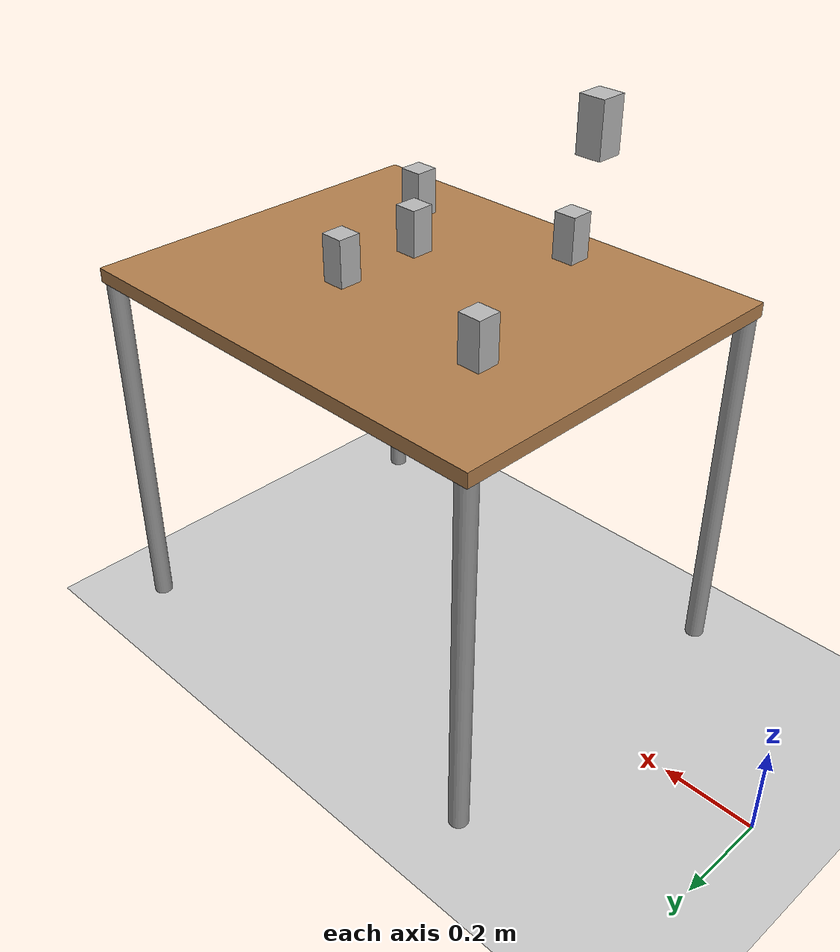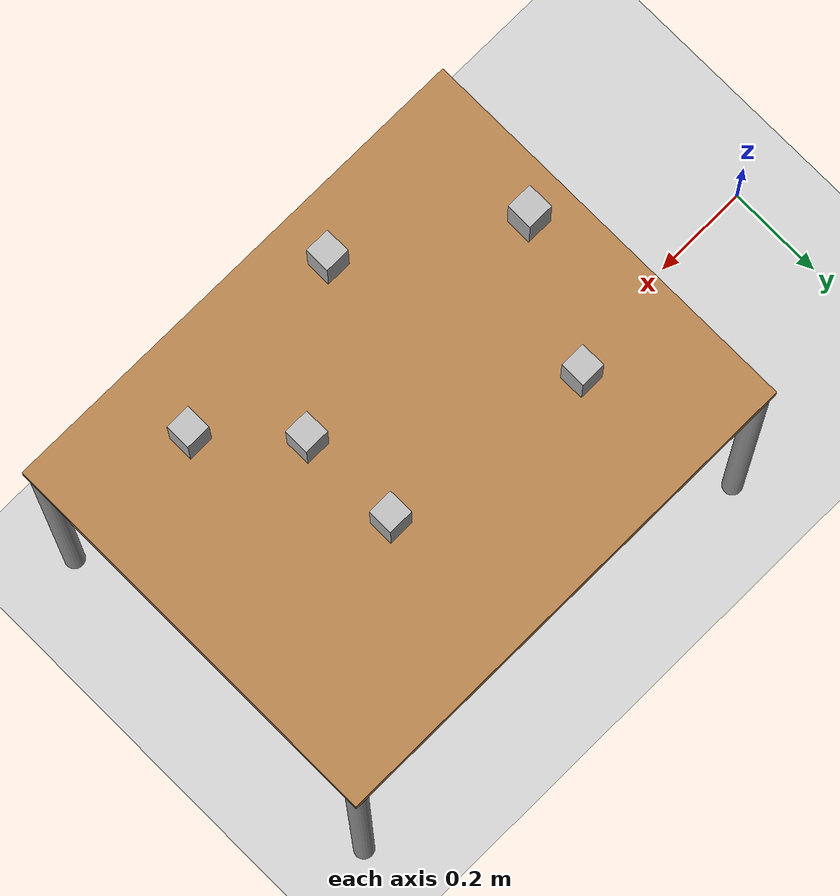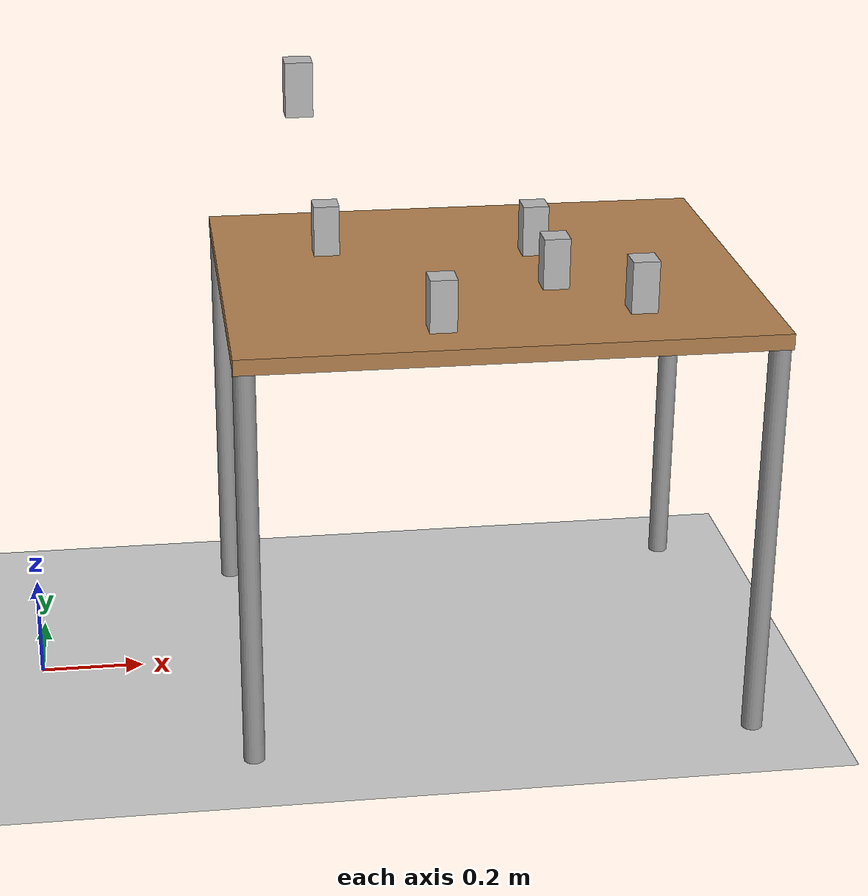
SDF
<sdf version="1.4">
 <world name="default">
  <physics type="ode">
   <gravity>0 0 -9.81</gravity>
   <ode>
    <solver><type>quick</type><iters>20</iters><sor>1</sor></solver>
    <constraints>
     <cfm>0</cfm>
     <erp>0.2</erp>
     <contact_max_correcting_vel>100</contact_max_correcting_vel>
     <contact_surface_layer>0</contact_surface_layer>
    </constraints>
   </ode>
   <real_time_update_rate>1000</real_time_update_rate>
   <max_step_size>0.001</max_step_size>
   <real_time_factor>1</real_time_factor>
  </physics>
  <light name="light1" type="directional">
   <pose>-2 0 4 0 -0 0</pose>
   <diffuse>1 1 1 1</diffuse>
   <specular>0.1 0.1 0.1 1</specular>
   <attenuation>
    <range>20</range>
    <constant>0.9</constant>
    <linear>0.01</linear>
    <quadratic>0.001</quadratic>
   </attenuation>
   <direction>0.2 0 -1</direction>
  </light>
  <model name="ground_plane">
   <static>1</static>
   <link name="link">
    <collision name="collision">
     <geometry><plane><normal>0 0 1</normal><size>100 100</size></plane></geometry>
     <surface><friction><ode><mu>100</mu><mu2>50</mu2></ode></friction></surface>
    </collision>
    <visual name="visual">
     <cast_shadows>0</cast_shadows>
     <geometry><plane><normal>0 0 1</normal><size>100 100</size></plane></geometry>
     <material>
      <script><uri>file://media/materials/scripts/gazebo.material</uri><name>Gazebo/Grey</name></script>
     </material>
    </visual>
    <velocity_decay><linear>0</linear><angular>0</angular></velocity_decay>
   </link>
  </model>
  <model name="table1">
   <static>1</static>
   <link name="link">
    <collision name="surface">
     <pose>0 0 0.8 0 -0 0</pose>
     <geometry><box><size>1 0.8 0.03</size></box></geometry>
    </collision>
    <visual name="visual1">
     <pose>0 0 0.8 0 -0 0</pose>
     <geometry><box><size>1 0.8 0.03</size></box></geometry>
     <material>
      <script><uri>file://media/materials/scripts/gazebo.material</uri><name>Gazebo/Wood</name></script>
     </material>
    </visual>
    <collision name="front_left_leg">
     <pose>0.48 0.38 0.4 0 -0 0</pose>
     <geometry><cylinder><radius>0.02</radius><length>0.8</length></cylinder></geometry>
    </collision>
    <visual name="front_left_leg">
     <pose>0.48 0.38 0.4 0 -0 0</pose>
     <geometry><cylinder><radius>0.02</radius><length>0.8</length></cylinder></geometry>
     <material>
      <script><uri>file://media/materials/scripts/gazebo.material</uri><name>Gazebo/Grey</name></script>
     </material>
    </visual>
    <collision name="front_right_leg">
     <pose>0.48 -0.38 0.4 0 -0 0</pose>
     <geometry><cylinder><radius>0.02</radius><length>0.8</length></cylinder></geometry>
    </collision>
    <visual name="front_right_leg">
     <pose>0.48 -0.38 0.4 0 -0 0</pose>
     <geometry><cylinder><radius>0.02</radius><length>0.8</length></cylinder></geometry>
     <material>
      <script><uri>file://media/materials/scripts/gazebo.material</uri><name>Gazebo/Grey</name></script>
     </material>
    </visual>
    <collision name="back_right_leg">
     <pose>-0.48 -0.38 0.4 0 -0 0</pose>
     <geometry><cylinder><radius>0.02</radius><length>0.8</length></cylinder></geometry>
    </collision>
    <visual name="back_right_leg">
     <pose>-0.48 -0.38 0.4 0 -0 0</pose>
     <geometry><cylinder><radius>0.02</radius><length>0.8</length></cylinder></geometry>
     <material>
      <script><uri>file://media/materials/scripts/gazebo.material</uri><name>Gazebo/Grey</name></script>
     </material>
    </visual>
    <collision name="back_left_leg">
     <pose>-0.48 0.38 0.4 0 -0 0</pose>
     <geometry><cylinder><radius>0.02</radius><length>0.8</length></cylinder></geometry>
    </collision>
    <visual name="back_left_leg">
     <pose>-0.48 0.38 0.4 0 -0 0</pose>
     <geometry><cylinder><radius>0.02</radius><length>0.8</length></cylinder></geometry>
     <material>
      <script><uri>file://media/materials/scripts/gazebo.material</uri><name>Gazebo/Grey</name></script>
     </material>
    </visual>
    <velocity_decay><linear>0</linear><angular>0</angular></velocity_decay>
   </link>
   <pose>0.88 0 0 0 -0 0</pose>
  </model>
  <model name="aruco_cube1">
   <static>0</static>
   <link name="link">
    <inertial>
     <mass>0.05</mass>
     <inertia>
      <ixx>5.2083e-05</ixx>
      <ixy>0</ixy>
      <ixz>0</ixz>
      <iyy>5.2083e-05</iyy>
      <iyz>0</iyz>
      <izz>2.0833e-05</izz>
     </inertia>
    </inertial>
    <collision name="colision">
     <geometry><box><size>0.05 0.05 0.1</size></box></geometry>
     <surface>
      <friction><ode><mu>30</mu><mu2>30</mu2><fdir1>0 0 0</fdir1></ode></friction>
      <contact><ode><kp>1e+06</kp><kd>100</kd><min_depth>0.0025</min_depth><max_vel>1</max_vel></ode></contact>
     </surface>
    </collision>
    <visual name="visual1">
     <geometry><mesh><uri>model://aruco_cube/meshes/aruco_cube_5cm.dae</uri><scale>1 1 2</scale></mesh></geometry>
    </visual>
    <velocity_decay><linear>0</linear><angular>0</angular></velocity_decay>
   </link>
   <pose>0.53 -0.05 1.2 0 -0 0</pose>
  </model>
  <scene><ambient>0.4 0.4 0.4 1</ambient><background>0.7 0.7 0.7 1</background><shadows>1</shadows></scene>
  <spherical_coordinates>
   <surface_model>EARTH_WGS84</surface_model>
   <latitude_deg>0</latitude_deg>
   <longitude_deg>0</longitude_deg>
   <elevation>0</elevation>
   <heading_deg>0</heading_deg>
  </spherical_coordinates>
  <model name="aruco_cube2">
   <static>0</static>
   <link name="link">
    <inertial>
     <mass>0.05</mass>
     <inertia>
      <ixx>5.2083e-05</ixx>
      <ixy>0</ixy>
      <ixz>0</ixz>
      <iyy>5.2083e-05</iyy>
      <iyz>0</iyz>
      <izz>2.0833e-05</izz>
     </inertia>
    </inertial>
    <collision name="colision">
     <geometry><box><size>0.05 0.05 0.1</size></box></geometry>
     <surface>
      <friction><ode><mu>30</mu><mu2>30</mu2><fdir1>0 0 0</fdir1></ode></friction>
      <contact><ode><kp>1e+06</kp><kd>100</kd><min_depth>0.0025</min_depth><max_vel>1</max_vel></ode></contact>
     </surface>
    </collision>
    <visual name="visual1">
     <geometry><mesh><uri>model://aruco_cube2/meshes/aruco_cube_5cm.dae</uri><scale>1 1 2</scale></mesh></geometry>
    </visual>
    <velocity_decay><linear>0</linear><angular>0</angular></velocity_decay>
   </link>
   <pose>1.13771 -0.240908 0.863878 -0.002225 0.000653 0.003151</pose>
  </model>
  <model name="aruco_cube3">
   <static>0</static>
   <link name="link">
    <inertial>
     <mass>0.05</mass>
     <inertia>
      <ixx>5.2083e-05</ixx>
      <ixy>0</ixy>
      <ixz>0</ixz>
      <iyy>5.2083e-05</iyy>
      <iyz>0</iyz>
      <izz>2.0833e-05</izz>
     </inertia>
    </inertial>
    <collision name="colision">
     <geometry><box><size>0.05 0.05 0.1</size></box></geometry>
     <surface>
      <friction><ode><mu>30</mu><mu2>30</mu2><fdir1>0 0 0</fdir1></ode></friction>
      <contact><ode><kp>1e+06</kp><kd>100</kd><min_depth>0.0025</min_depth><max_vel>1</max_vel></ode></contact>
     </surface>
    </collision>
    <visual name="visual1">
     <geometry><mesh><uri>model://aruco_cube3/meshes/aruco_cube_5cm.dae</uri><scale>1 1 2</scale></mesh></geometry>
    </visual>
    <velocity_decay><linear>0</linear><angular>0</angular></velocity_decay>
   </link>
   <pose>1.00311 -0.095812 0.863851 -0.002116 0.000649 -2.11758e-22</pose>
  </model>
  <model name="aruco_cube4">
   <static>0</static>
   <link name="link">
    <inertial>
     <mass>0.05</mass>
     <inertia>
      <ixx>5.2083e-05</ixx>
      <ixy>0</ixy>
      <ixz>0</ixz>
      <iyy>5.2083e-05</iyy>
      <iyz>0</iyz>
      <izz>2.0833e-05</izz>
     </inertia>
    </inertial>
    <collision name="colision">
     <geometry><box><size>0.05 0.05 0.1</size></box></geometry>
     <surface>
      <friction><ode><mu>30</mu><mu2>30</mu2><fdir1>0 0 0</fdir1></ode></friction>
      <contact><ode><kp>1e+06</kp><kd>100</kd><min_depth>0.0025</min_depth><max_vel>1</max_vel></ode></contact>
     </surface>
    </collision>
    <visual name="visual1">
     <geometry><mesh><uri>model://aruco_cube4/meshes/aruco_cube_5cm.dae</uri><scale>1 1 2</scale></mesh></geometry>
    </visual>
    <velocity_decay><linear>0</linear><angular>0</angular></velocity_decay>
   </link>
   <pose>0.99993 0.099712 0.864221 -0.000456 0.000138 9.3e-05</pose>
  </model>
  <model name="aruco_cube5">
   <static>0</static>
   <link name="link">
    <inertial>
     <mass>0.05</mass>
     <inertia>
      <ixx>5.2083e-05</ixx>
      <ixy>0</ixy>
      <ixz>0</ixz>
      <iyy>5.2083e-05</iyy>
      <iyz>0</iyz>
      <izz>2.0833e-05</izz>
     </inertia>
    </inertial>
    <collision name="colision">
     <geometry><box><size>0.05 0.05 0.1</size></box></geometry>
     <surface>
      <friction><ode><mu>30</mu><mu2>30</mu2><fdir1>0 0 0</fdir1></ode></friction>
      <contact><ode><kp>1e+06</kp><kd>100</kd><min_depth>0.0025</min_depth><max_vel>1</max_vel></ode></contact>
     </surface>
    </collision>
    <visual name="visual1">
     <geometry><mesh><uri>model://aruco_cube5/meshes/aruco_cube_5cm.dae</uri><scale>1 1 2</scale></mesh></geometry>
    </visual>
    <velocity_decay><linear>0</linear><angular>0</angular></velocity_decay>
   </link>
   <pose>0.760412 -0.292673 0.864235 -0.000396 0.00012 -6.61744e-24</pose>
  </model>
  <model name="aruco_cube6">
   <static>0</static>
   <link name="link">
    <inertial>
     <mass>0.05</mass>
     <inertia>
      <ixx>5.2083e-05</ixx>
      <ixy>0</ixy>
      <ixz>0</ixz>
      <iyy>5.2083e-05</iyy>
      <iyz>0</iyz>
      <izz>2.0833e-05</izz>
     </inertia>
    </inertial>
    <collision name="colision">
     <geometry><box><size>0.05 0.05 0.1</size></box></geometry>
     <surface>
      <friction><ode><mu>30</mu><mu2>30</mu2><fdir1>0 0 0</fdir1></ode></friction>
      <contact><ode><kp>1e+06</kp><kd>100</kd><min_depth>0.0025</min_depth><max_vel>1</max_vel></ode></contact>
     </surface>
    </collision>
    <visual name="visual1">
     <geometry><mesh><uri>model://aruco_cube5/meshes/aruco_cube_5cm.dae</uri><scale>1 1 2</scale></mesh></geometry>
    </visual>
    <velocity_decay><linear>0</linear><angular>0</angular></velocity_decay>
   </link>
   <pose>0.596071 0.148864 0.864544 -0.000396 0.00012 -6.61744e-24</pose>
  </model>
 </world>
</sdf>
